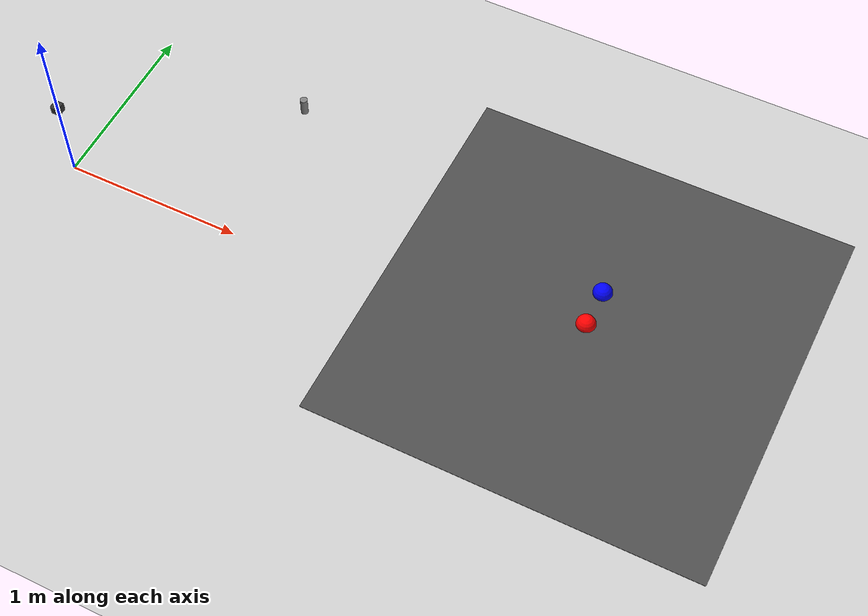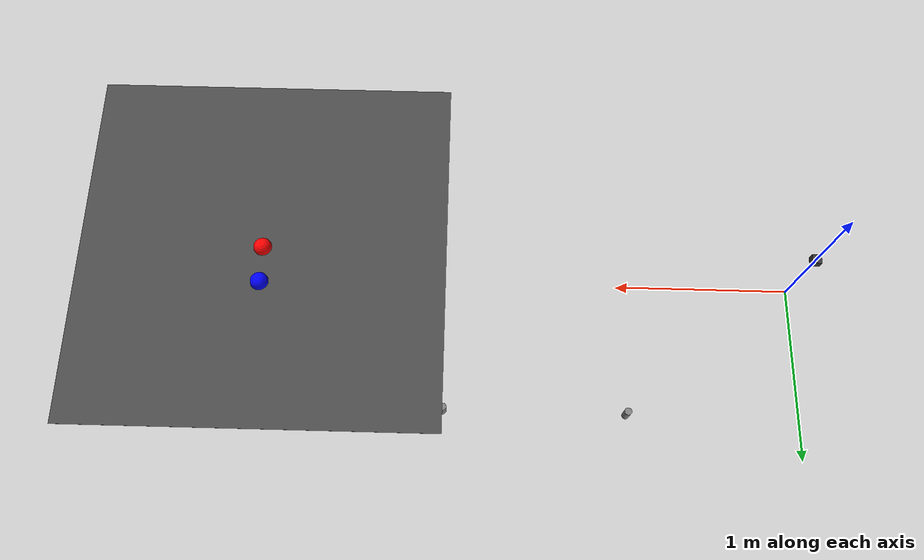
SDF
<?xml version="1.0" ?>
<sdf version="1.6">
  <world name="camera_resolution">

    <!-- Sun and ground plane -->
    <include>
      <uri>model://sun</uri>
    </include>
    <include>
      <uri>model://ground_plane</uri>
    </include>

    <!-- Camera mounting point -->
    <model name="camera_mount">
      <static>true</static>
      <link name="link">
        <pose>0 0 0.5 0 0 0</pose>  <!-- Camera at 0.5m height, facing +X -->
        <visual name="visual">
          <geometry>
            <box>
              <size>0.05 0.05 0.05</size>
            </box>
          </geometry>
          <material>
            <diffuse>0.2 0.2 0.2 1</diffuse>
          </material>
        </visual>
        <inertial>
          <mass>0.1</mass>
          <inertia>
            <ixx>0.0001</ixx>
            <iyy>0.0001</iyy>
            <izz>0.0001</izz>
          </inertia>
        </inertial>
      </link>
    </model>

    <!-- Sphere A - will be positioned dynamically by the test -->
    <model name="sphere_a">
      <static>true</static>
      <link name="link">
        <pose>3.0 0 0.5 0 0 0</pose>  <!-- Initial position, will be moved -->
        <visual name="visual">
          <geometry>
            <sphere>
              <radius>0.05</radius>  <!-- 5cm radius spheres -->
            </sphere>
          </geometry>
          <material>
            <diffuse>1 0 0 1</diffuse>  <!-- Red -->
            <specular>0.3 0.3 0.3 1</specular>
          </material>
        </visual>
        <collision name="collision">
          <geometry>
            <sphere>
              <radius>0.05</radius>
            </sphere>
          </geometry>
        </collision>
      </link>
    </model>

    <!-- Sphere B - will be positioned dynamically by the test -->
    <model name="sphere_b">
      <static>true</static>
      <link name="link">
        <pose>3.0 0.2 0.5 0 0 0</pose>  <!-- Initial position, will be moved -->
        <visual name="visual">
          <geometry>
            <sphere>
              <radius>0.05</radius>  <!-- 5cm radius spheres -->
            </sphere>
          </geometry>
          <material>
            <diffuse>0 0 1 1</diffuse>  <!-- Blue -->
            <specular>0.3 0.3 0.3 1</specular>
          </material>
        </visual>
        <collision name="collision">
          <geometry>
            <sphere>
              <radius>0.05</radius>
            </sphere>
          </geometry>
        </collision>
      </link>
    </model>

    <!-- Background grid for better contrast and reference -->
    <model name="background_grid">
      <static>true</static>
      <link name="link">
        <pose>3.0 0 0.5 0 0 0</pose>
        <visual name="visual">
          <geometry>
            <plane>
              <normal>0 0 1</normal>
              <size>2 2</size>
            </plane>
          </geometry>
          <material>
            <diffuse>0.3 0.3 0.3 1</diffuse>
            <ambient>0.2 0.2 0.2</ambient>
            <script>
              <uri>model://grid/materials/scripts/grid.material</uri>
              <name>Grid/Default</name>
            </script>
          </material>
        </visual>
      </link>
    </model>

    <!-- Add some ambient markers at different distances for context -->
    <model name="distance_marker_1">
      <static>true</static>
      <link name="link">
        <pose>1.0 0.8 0.2 0 0 0</pose>
        <visual name="visual">
          <geometry>
            <cylinder>
              <radius>0.02</radius>
              <length>0.1</length>
            </cylinder>
          </geometry>
          <material>
            <diffuse>0.5 0.5 0.5 1</diffuse>
          </material>
        </visual>
      </link>
    </model>

    <model name="distance_marker_2">
      <static>true</static>
      <link name="link">
        <pose>2.0 0.8 0.2 0 0 0</pose>
        <visual name="visual">
          <geometry>
            <cylinder>
              <radius>0.02</radius>
              <length>0.1</length>
            </cylinder>
          </geometry>
          <material>
            <diffuse>0.5 0.5 0.5 1</diffuse>
          </material>
        </visual>
      </link>
    </model>

    <model name="distance_marker_3">
      <static>true</static>
      <link name="link">
        <pose>3.0 0.8 0.2 0 0 0</pose>
        <visual name="visual">
          <geometry>
            <cylinder>
              <radius>0.02</radius>
              <length>0.1</length>
            </cylinder>
          </geometry>
          <material>
            <diffuse>0.5 0.5 0.5 1</diffuse>
          </material>
        </visual>
      </link>
    </model>

    <!-- Additional lighting for better visibility -->
    <light name="spotlight" type="directional">
      <pose>2 0 3 0 0 0</pose>
      <diffuse>0.8 0.8 0.8 1</diffuse>
      <specular>0.2 0.2 0.2 1</specular>
      <direction>-0.5 0 -1</direction>
      <attenuation>
        <range>20</range>
        <constant>0.5</constant>
        <linear>0.2</linear>
        <quadratic>0.01</quadratic>
      </attenuation>
    </light>

    <!-- Physics settings -->
    <physics type="ode">
      <real_time_update_rate>1000</real_time_update_rate>
      <max_step_size>0.001</max_step_size>
    </physics>

    <!-- Scene settings -->
    <scene>
      <ambient>0.3 0.3 0.3 1</ambient>
      <background>0.05 0.05 0.05 1</background>
      <shadows>true</shadows>
      <grid>true</grid>
    </scene>

  </world>
</sdf>
